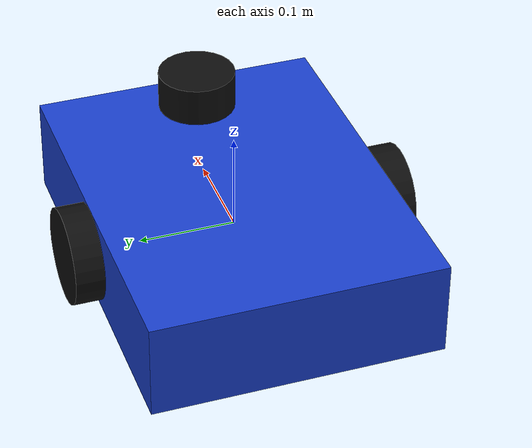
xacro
<?xml version="1.0"?>
<robot xmlns:xacro="http://www.ros.org/wiki/xacro" name="minimal_mobile_base">
  <xacro:property name="base_length" value="0.40"/>
  <xacro:property name="base_width" value="0.30"/>
  <xacro:property name="base_height" value="0.10"/>
  <xacro:property name="base_mass" value="2.0"/>

  <xacro:property name="wheel_radius" value="0.05"/>
  <xacro:property name="wheel_width" value="0.03"/>
  <xacro:property name="wheel_mass" value="0.20"/>
  <xacro:property name="wheel_y" value="${base_width / 2.0 + wheel_width / 2.0}"/>
  <xacro:property name="wheel_z" value="${-base_height / 2.0 + wheel_radius}"/>
  <xacro:property name="caster_radius" value="0.025"/>

  <material name="body_blue">
    <color rgba="0.1 0.25 0.8 1.0"/>
  </material>

  <material name="wheel_dark">
    <color rgba="0.05 0.05 0.05 1.0"/>
  </material>

  <xacro:macro name="box_inertial" params="mass x y z">
    <inertial>
      <origin xyz="0 0 0" rpy="0 0 0"/>
      <mass value="${mass}"/>
      <inertia
        ixx="${mass / 12.0 * (y*y + z*z)}"
        ixy="0.0"
        ixz="0.0"
        iyy="${mass / 12.0 * (x*x + z*z)}"
        iyz="0.0"
        izz="${mass / 12.0 * (x*x + y*y)}"/>
    </inertial>
  </xacro:macro>

  <xacro:macro name="cylinder_inertial_y_axis" params="mass radius length">
    <inertial>
      <origin xyz="0 0 0" rpy="0 0 0"/>
      <mass value="${mass}"/>
      <inertia
        ixx="${mass / 12.0 * (3.0*radius*radius + length*length)}"
        ixy="0.0"
        ixz="0.0"
        iyy="${0.5 * mass * radius * radius}"
        iyz="0.0"
        izz="${mass / 12.0 * (3.0*radius*radius + length*length)}"/>
    </inertial>
  </xacro:macro>

  <link name="base_link">
    <visual>
      <origin xyz="0 0 0" rpy="0 0 0"/>
      <geometry>
        <box size="${base_length} ${base_width} ${base_height}"/>
      </geometry>
      <material name="body_blue"/>
    </visual>
    <collision>
      <origin xyz="0 0 0" rpy="0 0 0"/>
      <geometry>
        <box size="${base_length} ${base_width} ${base_height}"/>
      </geometry>
    </collision>
    <xacro:box_inertial mass="${base_mass}" x="${base_length}" y="${base_width}" z="${base_height}"/>
  </link>

  <xacro:macro name="wheel" params="prefix y_sign">
    <link name="${prefix}_wheel_link">
      <visual>
        <origin xyz="0 0 0" rpy="1.5708 0 0"/>
        <geometry>
          <cylinder radius="${wheel_radius}" length="${wheel_width}"/>
        </geometry>
        <material name="wheel_dark"/>
      </visual>
      <collision>
        <origin xyz="0 0 0" rpy="1.5708 0 0"/>
        <geometry>
          <cylinder radius="${wheel_radius}" length="${wheel_width}"/>
        </geometry>
      </collision>
      <xacro:cylinder_inertial_y_axis mass="${wheel_mass}" radius="${wheel_radius}" length="${wheel_width}"/>
    </link>

    <joint name="${prefix}_wheel_joint" type="continuous">
      <parent link="base_link"/>
      <child link="${prefix}_wheel_link"/>
      <origin xyz="0 ${y_sign * wheel_y} ${wheel_z}" rpy="0 0 0"/>
      <axis xyz="0 1 0"/>
      <dynamics damping="0.05" friction="0.0"/>
    </joint>
  </xacro:macro>

  <xacro:wheel prefix="left" y_sign="1"/>
  <xacro:wheel prefix="right" y_sign="-1"/>

  <link name="caster_link">
    <visual>
      <origin xyz="0 0 0" rpy="0 0 0"/>
      <geometry>
        <sphere radius="${caster_radius}"/>
      </geometry>
      <material name="wheel_dark"/>
    </visual>
    <collision>
      <origin xyz="0 0 0" rpy="0 0 0"/>
      <geometry>
        <sphere radius="${caster_radius}"/>
      </geometry>
    </collision>
    <inertial>
      <mass value="0.05"/>
      <inertia ixx="0.0000125" ixy="0" ixz="0" iyy="0.0000125" iyz="0" izz="0.0000125"/>
    </inertial>
  </link>

  <joint name="caster_joint" type="fixed">
    <parent link="base_link"/>
    <child link="caster_link"/>
    <origin xyz="-0.14 0 ${-base_height / 2.0 + caster_radius}" rpy="0 0 0"/>
  </joint>

  <link name="laser_link">
    <visual>
      <origin xyz="0 0 0" rpy="0 0 0"/>
      <geometry>
        <cylinder radius="0.04" length="0.04"/>
      </geometry>
      <material name="wheel_dark"/>
    </visual>
  </link>

  <joint name="laser_joint" type="fixed">
    <parent link="base_link"/>
    <child link="laser_link"/>
    <origin xyz="0.12 0 0.09" rpy="0 0 0"/>
  </joint>
</robot>
